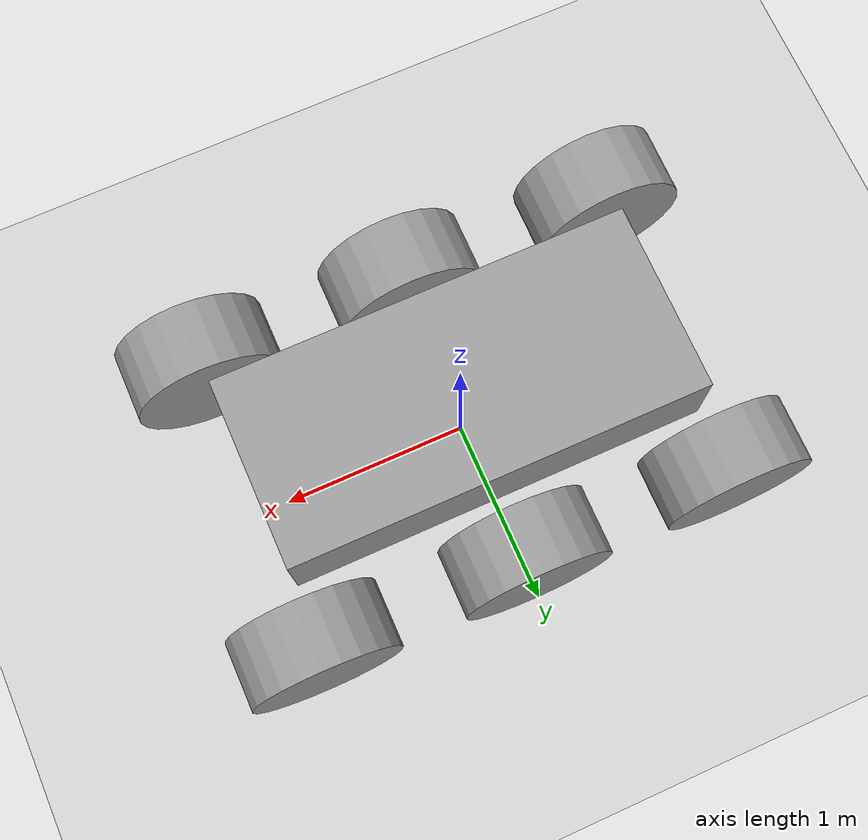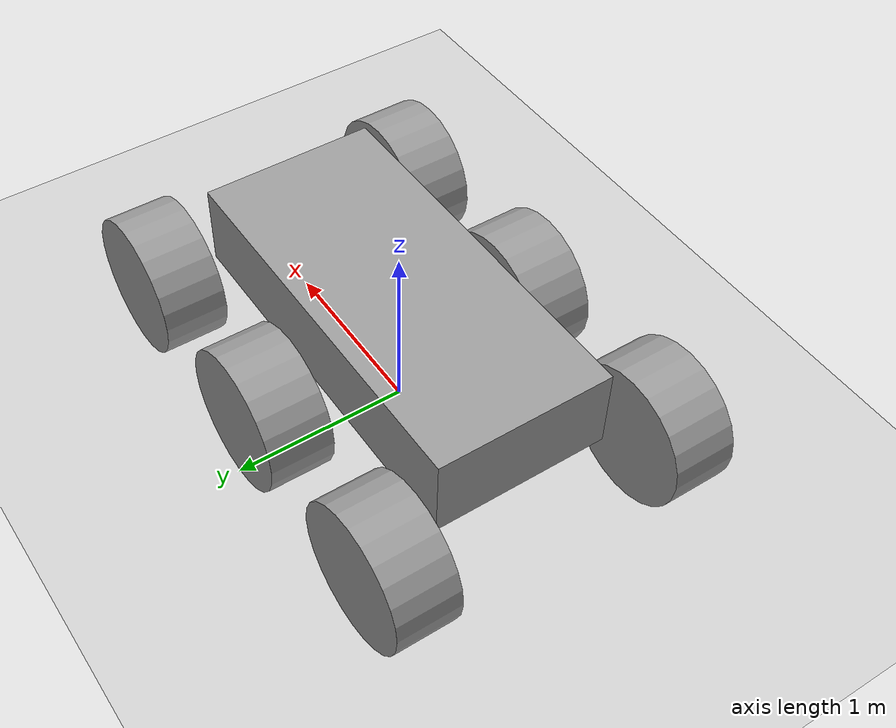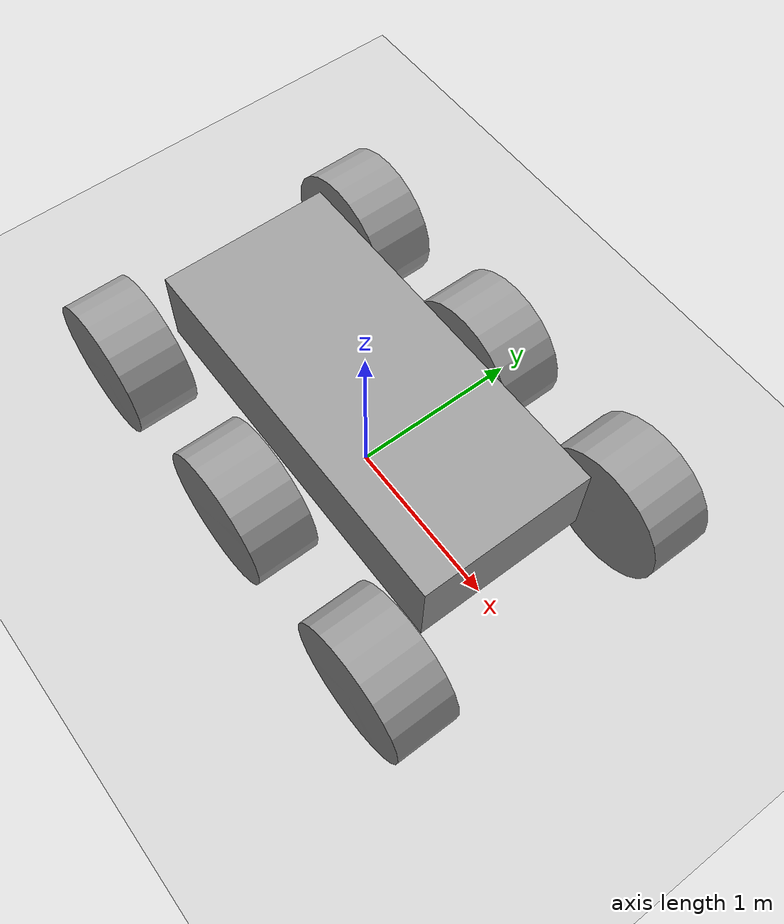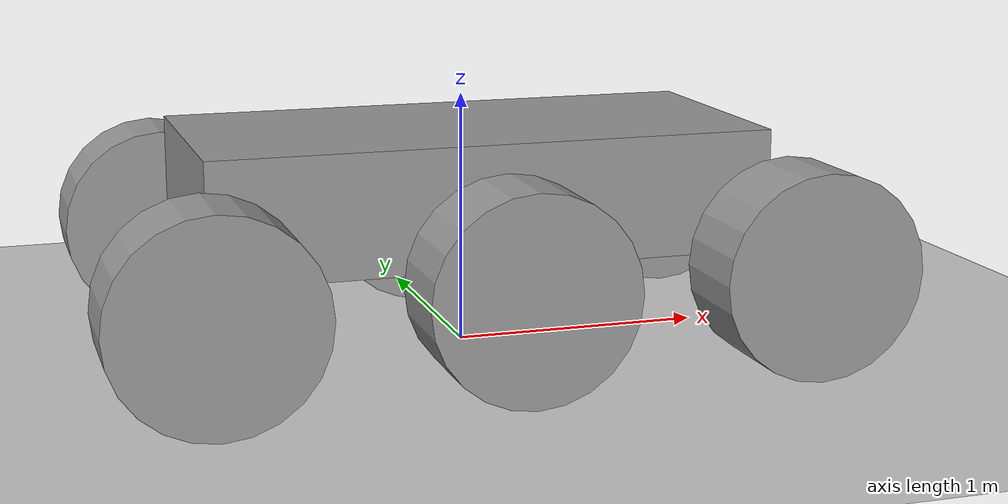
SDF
<sdf version="1.6">
 <world name="default">
  <light name="sun" type="directional">
   <pose>0 0 10 0 -0 0</pose>
   <diffuse>0.8 0.8 0.8 1</diffuse>
   <specular>0.1 0.1 0.1 1</specular>
   <attenuation>
    <range>1000</range>
    <constant>0.9</constant>
    <linear>0.01</linear>
    <quadratic>0.001</quadratic>
   </attenuation>
   <direction>-0.5 0.5 -1</direction>
  </light>
  <model name="ground_plane">
   <static>1</static>
   <link name="link">
    <collision name="collision">
     <geometry><plane><normal>0 0 1</normal><size>100 100</size></plane></geometry>
     <surface><friction><ode><mu>100</mu><mu2>50</mu2></ode></friction></surface>
    </collision>
    <visual name="visual">
     <cast_shadows>0</cast_shadows>
     <geometry><plane><normal>0 0 1</normal><size>100 100</size></plane></geometry>
     <material>
      <script><uri>file://media/materials/scripts/gazebo.material</uri><name>Gazebo/Grey</name></script>
     </material>
    </visual>
   </link>
  </model>
  <gravity>0 0 -9.8</gravity>
  <magnetic_field>6e-06 2.3e-05 -4.2e-05</magnetic_field>
  <atmosphere type="adiabatic"/>
  <physics name="default_physics" default="0" type="ode">
   <max_step_size>0.001</max_step_size>
   <real_time_factor>1</real_time_factor>
   <real_time_update_rate>1000</real_time_update_rate>
  </physics>
  <scene><ambient>0.4 0.4 0.4 1</ambient><background>0.7 0.7 0.7 1</background><shadows>1</shadows></scene>
  <spherical_coordinates>
   <surface_model>EARTH_WGS84</surface_model>
   <latitude_deg>0</latitude_deg>
   <longitude_deg>0</longitude_deg>
   <elevation>0</elevation>
   <heading_deg>0</heading_deg>
  </spherical_coordinates>
  <model name="test_rover">
   <link name="chassis">
    <pose>-0.003538 -0.008405 0.211896 0 -0 0</pose>
    <inertial>
     <mass>30</mass>
     <inertia>
      <ixx>0.106812</ixx>
      <ixy>0</ixy>
      <ixz>0</ixz>
      <iyy>0.442625</iyy>
      <iyz>0</iyz>
      <izz>0.510137</izz>
     </inertia>
    </inertial>
    <visual name="visual">
     <geometry><box><size>2.20282 1 0.474815</size></box></geometry>
     <material>
      <lighting>1</lighting>
      <script><uri>file://media/materials/scripts/gazebo.material</uri><name>Gazebo/Grey</name></script>
      <ambient>0.3 0.3 0.3 1</ambient>
      <diffuse>0.7 0.7 0.7 1</diffuse>
      <specular>0.01 0.01 0.01 1</specular>
      <emissive>0 0 0 1</emissive>
      <shader type="vertex"><normal_map>__default__</normal_map></shader>
     </material>
    </visual>
    <collision name="collision">
     <geometry><box><size>2.20282 1 0.474815</size></box></geometry>
     <surface>
      <friction>
       <ode><mu>1</mu><mu2>1</mu2><fdir1>0 0 0</fdir1><slip1>0</slip1><slip2>0</slip2></ode>
       <torsional>
        <coefficient>1</coefficient>
        <patch_radius>0</patch_radius>
        <surface_radius>0</surface_radius>
        <use_patch_radius>1</use_patch_radius>
        <ode><slip>0</slip></ode>
       </torsional>
      </friction>
      <bounce><restitution_coefficient>0</restitution_coefficient><threshold>1e+06</threshold></bounce>
      <contact>
       <collide_without_contact>0</collide_without_contact>
       <collide_without_contact_bitmask>1</collide_without_contact_bitmask>
       <collide_bitmask>1</collide_bitmask>
       <ode>
        <soft_cfm>0</soft_cfm>
        <soft_erp>0.2</soft_erp>
        <kp>1e+13</kp>
        <kd>1</kd>
        <max_vel>0.01</max_vel>
        <min_depth>0</min_depth>
       </ode>
       <bullet>
        <split_impulse>1</split_impulse>
        <split_impulse_penetration_threshold>-0.01</split_impulse_penetration_threshold>
        <soft_cfm>0</soft_cfm>
        <soft_erp>0.2</soft_erp>
        <kp>1e+13</kp>
        <kd>1</kd>
       </bullet>
      </contact>
     </surface>
    </collision>
   </link>
   <link name="wheel_1">
    <pose>-0.008064 -0.792141 -0.035316 1.5708 -0 0</pose>
    <inertial>
     <mass>1</mass>
     <inertia>
      <ixx>0.0114302</ixx>
      <ixy>0</ixy>
      <ixz>0</ixz>
      <iyy>0.0114302</iyy>
      <iyz>0</iyz>
      <izz>0.01796</izz>
     </inertia>
    </inertial>
    <visual name="visual">
     <geometry><cylinder><radius>0.397521</radius><length>0.35964</length></cylinder></geometry>
     <material>
      <lighting>1</lighting>
      <script><uri>file://media/materials/scripts/gazebo.material</uri><name>Gazebo/Grey</name></script>
      <ambient>0.3 0.3 0.3 1</ambient>
      <diffuse>0.7 0.7 0.7 1</diffuse>
      <specular>0.01 0.01 0.01 1</specular>
      <emissive>0 0 0 1</emissive>
      <shader type="vertex"><normal_map>__default__</normal_map></shader>
     </material>
    </visual>
    <collision name="collision">
     <geometry><cylinder><radius>0.397521</radius><length>0.35964</length></cylinder></geometry>
     <surface>
      <friction>
       <ode><mu>1</mu><mu2>1</mu2><fdir1>0 0 0</fdir1><slip1>0</slip1><slip2>0</slip2></ode>
       <torsional>
        <coefficient>1</coefficient>
        <patch_radius>0</patch_radius>
        <surface_radius>0</surface_radius>
        <use_patch_radius>1</use_patch_radius>
        <ode><slip>0</slip></ode>
       </torsional>
      </friction>
      <bounce><restitution_coefficient>0</restitution_coefficient><threshold>1e+06</threshold></bounce>
      <contact>
       <collide_without_contact>0</collide_without_contact>
       <collide_without_contact_bitmask>1</collide_without_contact_bitmask>
       <collide_bitmask>1</collide_bitmask>
       <ode>
        <soft_cfm>0</soft_cfm>
        <soft_erp>0.2</soft_erp>
        <kp>1e+13</kp>
        <kd>1</kd>
        <max_vel>0.01</max_vel>
        <min_depth>0</min_depth>
       </ode>
       <bullet>
        <split_impulse>1</split_impulse>
        <split_impulse_penetration_threshold>-0.01</split_impulse_penetration_threshold>
        <soft_cfm>0</soft_cfm>
        <soft_erp>0.2</soft_erp>
        <kp>1e+13</kp>
        <kd>1</kd>
       </bullet>
      </contact>
     </surface>
    </collision>
   </link>
   <link name="wheel_2">
    <pose>1.11909 -0.78845 -0.035316 1.5708 -0 0</pose>
    <inertial>
     <mass>1</mass>
     <inertia>
      <ixx>0.0114302</ixx>
      <ixy>0</ixy>
      <ixz>0</ixz>
      <iyy>0.0114302</iyy>
      <iyz>0</iyz>
      <izz>0.01796</izz>
     </inertia>
    </inertial>
    <visual name="visual">
     <geometry><cylinder><radius>0.397521</radius><length>0.35964</length></cylinder></geometry>
     <material>
      <lighting>1</lighting>
      <script><uri>file://media/materials/scripts/gazebo.material</uri><name>Gazebo/Grey</name></script>
      <ambient>0.3 0.3 0.3 1</ambient>
      <diffuse>0.7 0.7 0.7 1</diffuse>
      <specular>0.01 0.01 0.01 1</specular>
      <emissive>0 0 0 1</emissive>
      <shader type="vertex"><normal_map>__default__</normal_map></shader>
     </material>
    </visual>
    <collision name="collision">
     <geometry><cylinder><radius>0.397521</radius><length>0.35964</length></cylinder></geometry>
     <surface>
      <friction>
       <ode><mu>1</mu><mu2>1</mu2><fdir1>0 0 0</fdir1><slip1>0</slip1><slip2>0</slip2></ode>
       <torsional>
        <coefficient>1</coefficient>
        <patch_radius>0</patch_radius>
        <surface_radius>0</surface_radius>
        <use_patch_radius>1</use_patch_radius>
        <ode><slip>0</slip></ode>
       </torsional>
      </friction>
      <bounce><restitution_coefficient>0</restitution_coefficient><threshold>1e+06</threshold></bounce>
      <contact>
       <collide_without_contact>0</collide_without_contact>
       <collide_without_contact_bitmask>1</collide_without_contact_bitmask>
       <collide_bitmask>1</collide_bitmask>
       <ode>
        <soft_cfm>0</soft_cfm>
        <soft_erp>0.2</soft_erp>
        <kp>1e+13</kp>
        <kd>1</kd>
        <max_vel>0.01</max_vel>
        <min_depth>0</min_depth>
       </ode>
       <bullet>
        <split_impulse>1</split_impulse>
        <split_impulse_penetration_threshold>-0.01</split_impulse_penetration_threshold>
        <soft_cfm>0</soft_cfm>
        <soft_erp>0.2</soft_erp>
        <kp>1e+13</kp>
        <kd>1</kd>
       </bullet>
      </contact>
     </surface>
    </collision>
   </link>
   <link name="wheel_3">
    <pose>-1.14121 -0.798067 -0.035316 1.5708 -0 0</pose>
    <inertial>
     <mass>1</mass>
     <inertia>
      <ixx>0.0114302</ixx>
      <ixy>0</ixy>
      <ixz>0</ixz>
      <iyy>0.0114302</iyy>
      <iyz>0</iyz>
      <izz>0.01796</izz>
     </inertia>
    </inertial>
    <visual name="visual">
     <geometry><cylinder><radius>0.397521</radius><length>0.35964</length></cylinder></geometry>
     <material>
      <lighting>1</lighting>
      <script><uri>file://media/materials/scripts/gazebo.material</uri><name>Gazebo/Grey</name></script>
      <ambient>0.3 0.3 0.3 1</ambient>
      <diffuse>0.7 0.7 0.7 1</diffuse>
      <specular>0.01 0.01 0.01 1</specular>
      <emissive>0 0 0 1</emissive>
      <shader type="vertex"><normal_map>__default__</normal_map></shader>
     </material>
    </visual>
    <collision name="collision">
     <geometry><cylinder><radius>0.397521</radius><length>0.35964</length></cylinder></geometry>
     <surface>
      <friction>
       <ode><mu>1</mu><mu2>1</mu2><fdir1>0 0 0</fdir1><slip1>0</slip1><slip2>0</slip2></ode>
       <torsional>
        <coefficient>1</coefficient>
        <patch_radius>0</patch_radius>
        <surface_radius>0</surface_radius>
        <use_patch_radius>1</use_patch_radius>
        <ode><slip>0</slip></ode>
       </torsional>
      </friction>
      <bounce><restitution_coefficient>0</restitution_coefficient><threshold>1e+06</threshold></bounce>
      <contact>
       <collide_without_contact>0</collide_without_contact>
       <collide_without_contact_bitmask>1</collide_without_contact_bitmask>
       <collide_bitmask>1</collide_bitmask>
       <ode>
        <soft_cfm>0</soft_cfm>
        <soft_erp>0.2</soft_erp>
        <kp>1e+13</kp>
        <kd>1</kd>
        <max_vel>0.01</max_vel>
        <min_depth>0</min_depth>
       </ode>
       <bullet>
        <split_impulse>1</split_impulse>
        <split_impulse_penetration_threshold>-0.01</split_impulse_penetration_threshold>
        <soft_cfm>0</soft_cfm>
        <soft_erp>0.2</soft_erp>
        <kp>1e+13</kp>
        <kd>1</kd>
       </bullet>
      </contact>
     </surface>
    </collision>
   </link>
   <link name="wheel_4">
    <pose>0.004451 0.799068 -0.035316 1.5708 -0 0</pose>
    <inertial>
     <mass>1</mass>
     <inertia>
      <ixx>0.0114302</ixx>
      <ixy>0</ixy>
      <ixz>0</ixz>
      <iyy>0.0114302</iyy>
      <iyz>0</iyz>
      <izz>0.01796</izz>
     </inertia>
    </inertial>
    <visual name="visual">
     <geometry><cylinder><radius>0.397521</radius><length>0.35964</length></cylinder></geometry>
     <material>
      <lighting>1</lighting>
      <script><uri>file://media/materials/scripts/gazebo.material</uri><name>Gazebo/Grey</name></script>
      <ambient>0.3 0.3 0.3 1</ambient>
      <diffuse>0.7 0.7 0.7 1</diffuse>
      <specular>0.01 0.01 0.01 1</specular>
      <emissive>0 0 0 1</emissive>
      <shader type="vertex"><normal_map>__default__</normal_map></shader>
     </material>
    </visual>
    <collision name="collision">
     <geometry><cylinder><radius>0.397521</radius><length>0.35964</length></cylinder></geometry>
     <surface>
      <friction>
       <ode><mu>1</mu><mu2>1</mu2><fdir1>0 0 0</fdir1><slip1>0</slip1><slip2>0</slip2></ode>
       <torsional>
        <coefficient>1</coefficient>
        <patch_radius>0</patch_radius>
        <surface_radius>0</surface_radius>
        <use_patch_radius>1</use_patch_radius>
        <ode><slip>0</slip></ode>
       </torsional>
      </friction>
      <bounce><restitution_coefficient>0</restitution_coefficient><threshold>1e+06</threshold></bounce>
      <contact>
       <collide_without_contact>0</collide_without_contact>
       <collide_without_contact_bitmask>1</collide_without_contact_bitmask>
       <collide_bitmask>1</collide_bitmask>
       <ode>
        <soft_cfm>0</soft_cfm>
        <soft_erp>0.2</soft_erp>
        <kp>1e+13</kp>
        <kd>1</kd>
        <max_vel>0.01</max_vel>
        <min_depth>0</min_depth>
       </ode>
       <bullet>
        <split_impulse>1</split_impulse>
        <split_impulse_penetration_threshold>-0.01</split_impulse_penetration_threshold>
        <soft_cfm>0</soft_cfm>
        <soft_erp>0.2</soft_erp>
        <kp>1e+13</kp>
        <kd>1</kd>
       </bullet>
      </contact>
     </surface>
    </collision>
   </link>
   <link name="wheel_5">
    <pose>-1.10763 0.791504 -0.035316 1.5708 -0 0</pose>
    <inertial>
     <mass>1</mass>
     <inertia>
      <ixx>0.0114302</ixx>
      <ixy>0</ixy>
      <ixz>0</ixz>
      <iyy>0.0114302</iyy>
      <iyz>0</iyz>
      <izz>0.01796</izz>
     </inertia>
    </inertial>
    <visual name="visual">
     <geometry><cylinder><radius>0.397521</radius><length>0.35964</length></cylinder></geometry>
     <material>
      <lighting>1</lighting>
      <script><uri>file://media/materials/scripts/gazebo.material</uri><name>Gazebo/Grey</name></script>
      <ambient>0.3 0.3 0.3 1</ambient>
      <diffuse>0.7 0.7 0.7 1</diffuse>
      <specular>0.01 0.01 0.01 1</specular>
      <emissive>0 0 0 1</emissive>
      <shader type="vertex"><normal_map>__default__</normal_map></shader>
     </material>
    </visual>
    <collision name="collision">
     <geometry><cylinder><radius>0.397521</radius><length>0.35964</length></cylinder></geometry>
     <surface>
      <friction>
       <ode><mu>1</mu><mu2>1</mu2><fdir1>0 0 0</fdir1><slip1>0</slip1><slip2>0</slip2></ode>
       <torsional>
        <coefficient>1</coefficient>
        <patch_radius>0</patch_radius>
        <surface_radius>0</surface_radius>
        <use_patch_radius>1</use_patch_radius>
        <ode><slip>0</slip></ode>
       </torsional>
      </friction>
      <bounce><restitution_coefficient>0</restitution_coefficient><threshold>1e+06</threshold></bounce>
      <contact>
       <collide_without_contact>0</collide_without_contact>
       <collide_without_contact_bitmask>1</collide_without_contact_bitmask>
       <collide_bitmask>1</collide_bitmask>
       <ode>
        <soft_cfm>0</soft_cfm>
        <soft_erp>0.2</soft_erp>
        <kp>1e+13</kp>
        <kd>1</kd>
        <max_vel>0.01</max_vel>
        <min_depth>0</min_depth>
       </ode>
       <bullet>
        <split_impulse>1</split_impulse>
        <split_impulse_penetration_threshold>-0.01</split_impulse_penetration_threshold>
        <soft_cfm>0</soft_cfm>
        <soft_erp>0.2</soft_erp>
        <kp>1e+13</kp>
        <kd>1</kd>
       </bullet>
      </contact>
     </surface>
    </collision>
   </link>
   <link name="wheel_6">
    <pose>1.1369 0.796491 -0.035316 1.5708 -0 0</pose>
    <inertial>
     <mass>1</mass>
     <inertia>
      <ixx>0.0114302</ixx>
      <ixy>0</ixy>
      <ixz>0</ixz>
      <iyy>0.0114302</iyy>
      <iyz>0</iyz>
      <izz>0.01796</izz>
     </inertia>
    </inertial>
    <visual name="visual">
     <geometry><cylinder><radius>0.397521</radius><length>0.35964</length></cylinder></geometry>
     <material>
      <lighting>1</lighting>
      <script><uri>file://media/materials/scripts/gazebo.material</uri><name>Gazebo/Grey</name></script>
      <ambient>0.3 0.3 0.3 1</ambient>
      <diffuse>0.7 0.7 0.7 1</diffuse>
      <specular>0.01 0.01 0.01 1</specular>
      <emissive>0 0 0 1</emissive>
      <shader type="vertex"><normal_map>__default__</normal_map></shader>
     </material>
    </visual>
    <collision name="collision">
     <geometry><cylinder><radius>0.397521</radius><length>0.35964</length></cylinder></geometry>
     <surface>
      <friction>
       <ode><mu>1</mu><mu2>1</mu2><fdir1>0 0 0</fdir1><slip1>0</slip1><slip2>0</slip2></ode>
       <torsional>
        <coefficient>1</coefficient>
        <patch_radius>0</patch_radius>
        <surface_radius>0</surface_radius>
        <use_patch_radius>1</use_patch_radius>
        <ode><slip>0</slip></ode>
       </torsional>
      </friction>
      <bounce><restitution_coefficient>0</restitution_coefficient><threshold>1e+06</threshold></bounce>
      <contact>
       <collide_without_contact>0</collide_without_contact>
       <collide_without_contact_bitmask>1</collide_without_contact_bitmask>
       <collide_bitmask>1</collide_bitmask>
       <ode>
        <soft_cfm>0</soft_cfm>
        <soft_erp>0.2</soft_erp>
        <kp>1e+13</kp>
        <kd>1</kd>
        <max_vel>0.01</max_vel>
        <min_depth>0</min_depth>
       </ode>
       <bullet>
        <split_impulse>1</split_impulse>
        <split_impulse_penetration_threshold>-0.01</split_impulse_penetration_threshold>
        <soft_cfm>0</soft_cfm>
        <soft_erp>0.2</soft_erp>
        <kp>1e+13</kp>
        <kd>1</kd>
       </bullet>
      </contact>
     </surface>
    </collision>
   </link>
   <joint name="chassis_JOINT_0" type="revolute">
    <parent>chassis</parent>
    <child>wheel_2</child>
    <axis>
     <xyz>0 0 -1</xyz>
     <use_parent_model_frame>0</use_parent_model_frame>
     <limit>
      <lower>-1.79769e+308</lower>
      <upper>1.79769e+308</upper>
      <effort>-1</effort>
      <velocity>-1</velocity>
     </limit>
     <dynamics>
      <spring_reference>0</spring_reference>
      <spring_stiffness>0</spring_stiffness>
      <damping>0</damping>
      <friction>0</friction>
     </dynamics>
    </axis>
    <physics>
     <ode><limit><cfm>0</cfm><erp>0.2</erp></limit><suspension><cfm>0</cfm><erp>0.2</erp></suspension></ode>
    </physics>
   </joint>
   <joint name="chassis_JOINT_1" type="revolute">
    <parent>chassis</parent>
    <child>wheel_1</child>
    <axis>
     <xyz>0 0 -1</xyz>
     <use_parent_model_frame>0</use_parent_model_frame>
     <limit>
      <lower>-1.79769e+308</lower>
      <upper>1.79769e+308</upper>
      <effort>-1</effort>
      <velocity>-1</velocity>
     </limit>
     <dynamics>
      <spring_reference>0</spring_reference>
      <spring_stiffness>0</spring_stiffness>
      <damping>0</damping>
      <friction>0</friction>
     </dynamics>
    </axis>
    <physics>
     <ode><limit><cfm>0</cfm><erp>0.2</erp></limit><suspension><cfm>0</cfm><erp>0.2</erp></suspension></ode>
    </physics>
   </joint>
   <joint name="chassis_JOINT_2" type="revolute">
    <parent>chassis</parent>
    <child>wheel_3</child>
    <axis>
     <xyz>0 0 -1</xyz>
     <use_parent_model_frame>0</use_parent_model_frame>
     <limit>
      <lower>-1.79769e+308</lower>
      <upper>1.79769e+308</upper>
      <effort>-1</effort>
      <velocity>-1</velocity>
     </limit>
     <dynamics>
      <spring_reference>0</spring_reference>
      <spring_stiffness>0</spring_stiffness>
      <damping>0</damping>
      <friction>0</friction>
     </dynamics>
    </axis>
    <physics>
     <ode><limit><cfm>0</cfm><erp>0.2</erp></limit><suspension><cfm>0</cfm><erp>0.2</erp></suspension></ode>
    </physics>
   </joint>
   <joint name="chassis_JOINT_3" type="revolute">
    <parent>chassis</parent>
    <child>wheel_6</child>
    <axis>
     <xyz>0 0 1</xyz>
     <use_parent_model_frame>0</use_parent_model_frame>
     <limit>
      <lower>-1.79769e+308</lower>
      <upper>1.79769e+308</upper>
      <effort>-1</effort>
      <velocity>-1</velocity>
     </limit>
     <dynamics>
      <spring_reference>0</spring_reference>
      <spring_stiffness>0</spring_stiffness>
      <damping>0</damping>
      <friction>0</friction>
     </dynamics>
    </axis>
    <physics>
     <ode><limit><cfm>0</cfm><erp>0.2</erp></limit><suspension><cfm>0</cfm><erp>0.2</erp></suspension></ode>
    </physics>
   </joint>
   <joint name="chassis_JOINT_4" type="revolute">
    <parent>chassis</parent>
    <child>wheel_4</child>
    <axis>
     <xyz>0 0 1</xyz>
     <use_parent_model_frame>0</use_parent_model_frame>
     <limit>
      <lower>-1.79769e+308</lower>
      <upper>1.79769e+308</upper>
      <effort>-1</effort>
      <velocity>-1</velocity>
     </limit>
     <dynamics>
      <spring_reference>0</spring_reference>
      <spring_stiffness>0</spring_stiffness>
      <damping>0</damping>
      <friction>0</friction>
     </dynamics>
    </axis>
    <physics>
     <ode><limit><cfm>0</cfm><erp>0.2</erp></limit><suspension><cfm>0</cfm><erp>0.2</erp></suspension></ode>
    </physics>
   </joint>
   <joint name="chassis_JOINT_5" type="revolute">
    <parent>chassis</parent>
    <child>wheel_5</child>
    <axis>
     <xyz>0 0 1</xyz>
     <use_parent_model_frame>0</use_parent_model_frame>
     <limit>
      <lower>-1.79769e+308</lower>
      <upper>1.79769e+308</upper>
      <effort>-1</effort>
      <velocity>-1</velocity>
     </limit>
     <dynamics>
      <spring_reference>0</spring_reference>
      <spring_stiffness>0</spring_stiffness>
      <damping>0</damping>
      <friction>0</friction>
     </dynamics>
    </axis>
    <physics>
     <ode><limit><cfm>0</cfm><erp>0.2</erp></limit><suspension><cfm>0</cfm><erp>0.2</erp></suspension></ode>
    </physics>
   </joint>
   <static>0</static>
   <pose>0.008093 0.016585 0.432824 -2.3e-05 3e-06 6e-06</pose>
  </model>
 </world>
</sdf>
